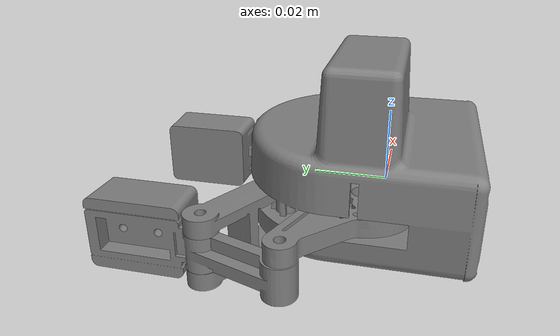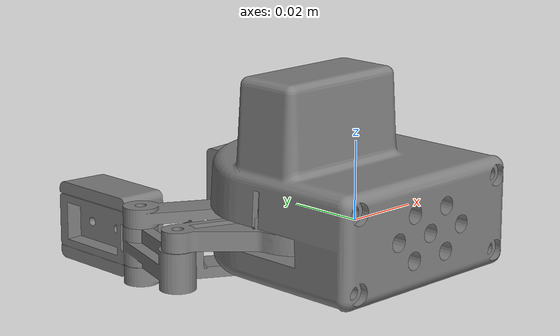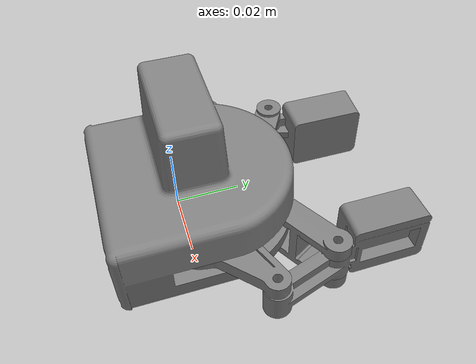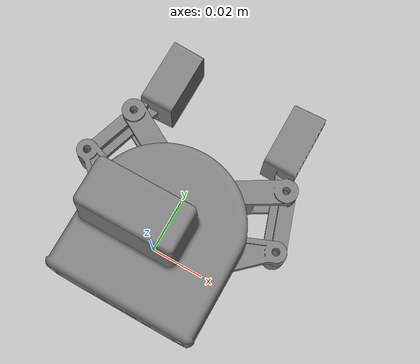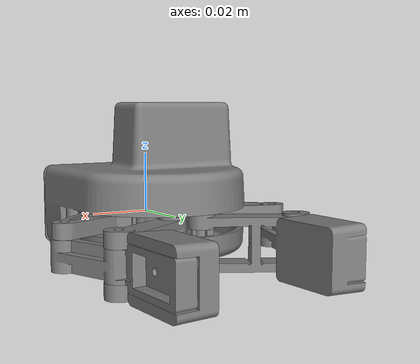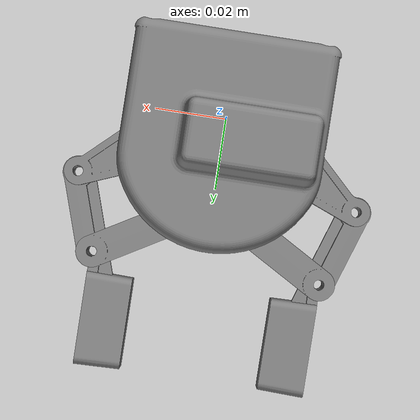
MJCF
<mujoco model="mycobot">
  <compiler angle="radian" meshdir="mesh/" autolimits="true"/>
  <statistic meansize="0.0320063" extent="0.157647" center="-0.000607315 0.0162442 0.00517874"/>
  <asset>
    <mesh name="gripper_base" file="gripper_base.obj"/>
    <mesh name="gripper_left1" file="gripper_left1.obj"/>
    <mesh name="gripper_left2" file="gripper_left2.obj"/>
    <mesh name="gripper_left3" file="gripper_left3.obj"/>
    <mesh name="gripper_right1" file="gripper_right1.obj"/>
    <mesh name="gripper_right2" file="gripper_right2.obj"/>
    <mesh name="gripper_right3" file="gripper_right3.obj"/>
  </asset>
  <worldbody>
    <geom pos="0 0.008 -0.012" type="mesh" contype="0" conaffinity="0" group="1" density="0" mesh="gripper_base"/>
    <geom pos="0 0.008 -0.012" type="mesh" mesh="gripper_base"/>
    <body name="gripper_left3" pos="-0.012 0.005 0">
      <joint name="gripper_base_to_gripper_left3" pos="0 0 0" axis="0 0 1" range="-0.7 0.15"/>
      <geom pos="0.012 0.0025 -0.012" type="mesh" contype="0" conaffinity="0" group="1" density="0" mesh="gripper_left3"/>
      <geom pos="0.012 0.0025 -0.012" type="mesh" mesh="gripper_left3"/>
      <body name="gripper_left1" pos="-0.027 0.016 0">
        <joint name="gripper_left3_to_gripper_left1" pos="0 0 0" axis="0 0 1" range="-0.5 0.5"/>
        <geom pos="0.039 -0.0133 -0.012" type="mesh" contype="0" conaffinity="0" group="1" density="0" mesh="gripper_left1"/>
        <geom pos="0.039 -0.0133 -0.012" type="mesh" mesh="gripper_left1"/>
      </body>
    </body>
    <body name="gripper_left2" pos="-0.005 0.027 0">
      <joint name="gripper_base_to_gripper_left2" pos="0 0 0" axis="0 0 1" range="-0.8 0.5"/>
      <geom pos="0.005 -0.0195 -0.012" type="mesh" contype="0" conaffinity="0" group="1" density="0" mesh="gripper_left2"/>
      <geom pos="0.005 -0.0195 -0.012" type="mesh" mesh="gripper_left2"/>
    </body>
    <body name="gripper_right3" pos="0.012 0.005 0">
      <joint name="gripper_base_to_gripper_right3" pos="0 0 0" axis="0 0 1" range="-0.15 0.7"/>
      <geom pos="-0.012 0.0025 -0.012" type="mesh" contype="0" conaffinity="0" group="1" density="0" mesh="gripper_right3"/>
      <geom pos="-0.012 0.0025 -0.012" type="mesh" mesh="gripper_right3"/>
      <body name="gripper_right1" pos="0.027 0.016 0">
        <joint name="gripper_right3_to_gripper_right1" pos="0 0 0" axis="0 0 1" range="-0.5 0.5"/>
        <geom pos="-0.039 -0.0133 -0.012" type="mesh" contype="0" conaffinity="0" group="1" density="0" mesh="gripper_right1"/>
        <geom pos="-0.039 -0.0133 -0.012" type="mesh" mesh="gripper_right1"/>
      </body>
    </body>
    <body name="gripper_right2" pos="0.005 0.027 0">
      <joint name="gripper_base_to_gripper_right2" pos="0 0 0" axis="0 0 1" range="-0.5 0.8"/>
      <geom pos="-0.005 -0.0195 -0.012" type="mesh" contype="0" conaffinity="0" group="1" density="0" mesh="gripper_right2"/>
      <geom pos="-0.005 -0.0195 -0.012" type="mesh" mesh="gripper_right2"/>
    </body>
  </worldbody>
</mujoco>
